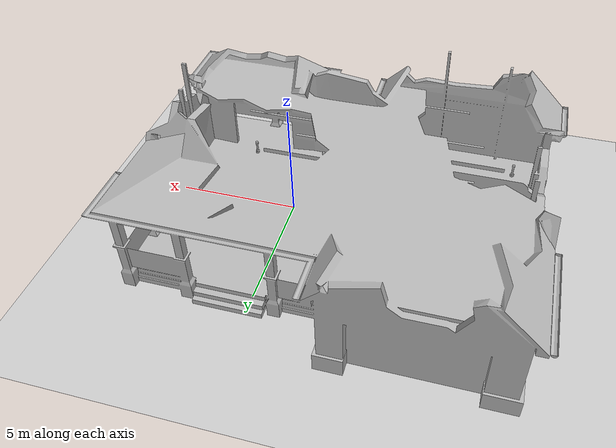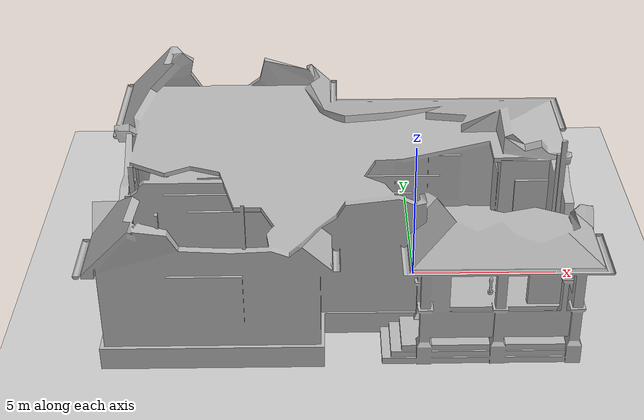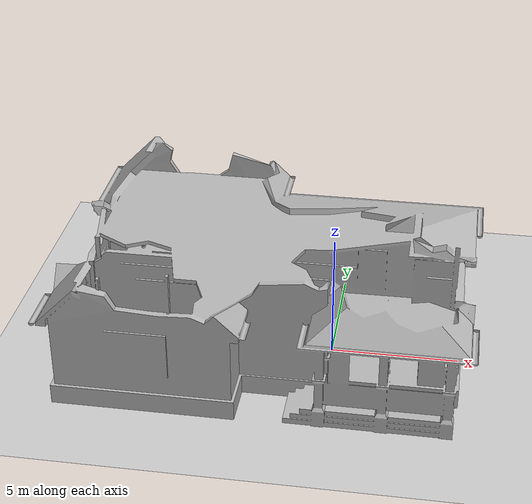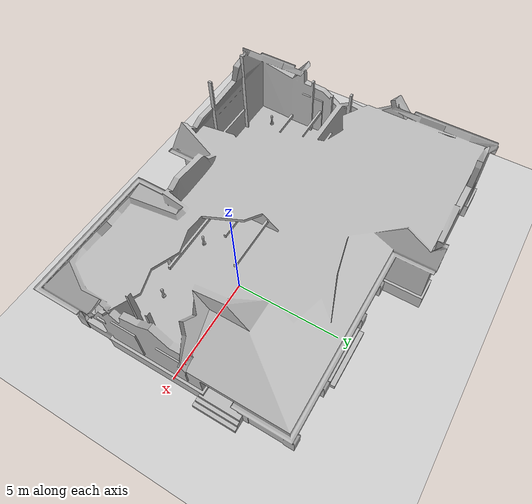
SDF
<sdf version="1.6">
 <world name="default">
  <light name="sun" type="directional">
   <pose>0 0 10 0 -0 0</pose>
   <diffuse>0.8 0.8 0.8 1</diffuse>
   <specular>0.2 0.2 0.2 1</specular>
   <attenuation>
    <range>1000</range>
    <constant>0.9</constant>
    <linear>0.01</linear>
    <quadratic>0.001</quadratic>
   </attenuation>
   <direction>-0.5 0.1 -0.9</direction>
  </light>
  <model name="ground_plane">
   <static>1</static>
   <link name="link">
    <collision name="collision">
     <geometry><plane><normal>0 0 1</normal><size>100 100</size></plane></geometry>
     <surface><friction><ode><mu>100</mu><mu2>50</mu2></ode></friction></surface>
    </collision>
    <visual name="visual">
     <cast_shadows>0</cast_shadows>
     <geometry><plane><normal>0 0 1</normal><size>100 100</size></plane></geometry>
     <material>
      <script><uri>file://media/materials/scripts/gazebo.material</uri><name>Gazebo/Grey</name></script>
     </material>
    </visual>
   </link>
  </model>
  <gravity>0 0 -9.8</gravity>
  <magnetic_field>6e-06 2.3e-05 -4.2e-05</magnetic_field>
  <atmosphere type="adiabatic"/>
  <physics name="default_physics" default="0" type="ode">
   <max_step_size>0.001</max_step_size>
   <real_time_factor>1</real_time_factor>
   <real_time_update_rate>1000</real_time_update_rate>
  </physics>
  <scene><ambient>0.4 0.4 0.4 1</ambient><background>0.7 0.7 0.7 1</background><shadows>1</shadows></scene>
  <spherical_coordinates>
   <surface_model>EARTH_WGS84</surface_model>
   <latitude_deg>0</latitude_deg>
   <longitude_deg>0</longitude_deg>
   <elevation>0</elevation>
   <heading_deg>0</heading_deg>
  </spherical_coordinates>
  <model name="collapsed_house">
   <static>1</static>
   <link name="link">
    <collision name="collision">
     <geometry>
      <mesh><scale>1.5 1.5 1.5</scale><uri>model://collapsed_house/meshes/collapsed_house.dae</uri></mesh>
     </geometry>
    </collision>
    <visual name="visual">
     <geometry>
      <mesh><scale>1.5 1.5 1.5</scale><uri>model://collapsed_house/meshes/collapsed_house.dae</uri></mesh>
     </geometry>
    </visual>
   </link>
   <pose>-2.4721 1.10732 0 0 -0 0</pose>
  </model>
  <model name="mars_rover">
   <static>1</static>
   <link name="link">
    <collision name="solar_panel_collision">
     <pose>0 -0.06945 0.47293 0 -0 0</pose>
     <geometry><box><size>0.87974 0.8821 0.02602</size></box></geometry>
    </collision>
    <collision name="chassis_collision">
     <pose>0 -0.05 0.31475 0 -0 0</pose>
     <geometry><box><size>0.49522 0.67401 0.28915</size></box></geometry>
    </collision>
    <collision name="rear_left_bumper_collision">
     <pose>0.30107 0.3835 0.38976 0 -0 0</pose>
     <geometry><box><size>0.04442 0.38897 0.07918</size></box></geometry>
    </collision>
    <collision name="rear_right_bumper_collision">
     <pose>-0.30107 0.3835 0.38976 0 -0 0</pose>
     <geometry><box><size>0.04442 0.38897 0.07918</size></box></geometry>
    </collision>
    <collision name="rear_bumper_collision">
     <pose>0 0.59414 0.38976 0 -0 0</pose>
     <geometry><box><size>0.56656 0.04442 0.07918</size></box></geometry>
    </collision>
    <collision name="bin_back_panel_collision">
     <pose>0 0.47 0.32114 0.69137 -0 0</pose>
     <geometry><box><size>0.43774 0.212366 0.05173</size></box></geometry>
    </collision>
    <collision name="bin_left_panel_collision1">
     <pose>0.22615 0.32897 0.33193 0 -0 0</pose>
     <geometry><box><size>0.01116 0.19338 0.16304</size></box></geometry>
    </collision>
    <collision name="bin_left_panel_collision2">
     <pose>0.22615 0.471 0.39308 0 -0 0</pose>
     <geometry><box><size>0.01116 0.15 0.04</size></box></geometry>
    </collision>
    <collision name="bin_left_panel_collision3">
     <pose>0.22615 0.45 0.35308 0 -0 0</pose>
     <geometry><box><size>0.01116 0.15 0.04</size></box></geometry>
    </collision>
    <collision name="bin_left_panel_collision4">
     <pose>0.22615 0.39308 0.31308 0 -0 0</pose>
     <geometry><box><size>0.01116 0.15 0.04</size></box></geometry>
    </collision>
    <collision name="bin_right_panel_collision1">
     <pose>-0.22615 0.32897 0.33193 0 -0 0</pose>
     <geometry><box><size>0.01116 0.19338 0.16304</size></box></geometry>
    </collision>
    <collision name="bin_right_panel_collision2">
     <pose>-0.22615 0.471 0.39308 0 -0 0</pose>
     <geometry><box><size>0.01116 0.15 0.04</size></box></geometry>
    </collision>
    <collision name="bin_right_panel_collision3">
     <pose>-0.22615 0.45 0.35308 0 -0 0</pose>
     <geometry><box><size>0.01116 0.15 0.04</size></box></geometry>
    </collision>
    <collision name="bin_right_panel_collision4">
     <pose>-0.22615 0.39308 0.31308 0 -0 0</pose>
     <geometry><box><size>0.01116 0.15 0.04</size></box></geometry>
    </collision>
    <collision name="bin_front_panel_collision">
     <pose>0 0.30047 0.32114 2.26207 -0 0</pose>
     <geometry><box><size>0.43774 0.212366 0.05173</size></box></geometry>
    </collision>
    <collision name="front_left_wheel_collision">
     <pose>0.31103 -0.32115 0.1358 1.5707 0 1.5707</pose>
     <geometry><cylinder><radius>0.1358</radius><length>0.1641</length></cylinder></geometry>
    </collision>
    <collision name="front_right_wheel_collision">
     <pose>-0.31103 -0.32115 0.1358 1.5707 0 1.5707</pose>
     <geometry><cylinder><radius>0.1358</radius><length>0.1641</length></cylinder></geometry>
    </collision>
    <collision name="rear_left_wheel_collision">
     <pose>0.31103 0.28049 0.1358 1.5707 0 1.5707</pose>
     <geometry><cylinder><radius>0.1358</radius><length>0.1641</length></cylinder></geometry>
    </collision>
    <collision name="rear_right_wheel_collision">
     <pose>-0.31103 0.28049 0.1358 1.5707 0 1.5707</pose>
     <geometry><cylinder><radius>0.1358</radius><length>0.1641</length></cylinder></geometry>
    </collision>
    <visual name="visual">
     <geometry><mesh><uri>model://mars_rover/meshes/rover.dae</uri></mesh></geometry>
    </visual>
   </link>
   <pose>3.58025 -0.438435 0 0 -0 0</pose>
  </model>
  <model name="mars_rover_0">
   <static>1</static>
   <link name="link">
    <collision name="solar_panel_collision">
     <pose>0 -0.06945 0.47293 0 -0 0</pose>
     <geometry><box><size>0.87974 0.8821 0.02602</size></box></geometry>
    </collision>
    <collision name="chassis_collision">
     <pose>0 -0.05 0.31475 0 -0 0</pose>
     <geometry><box><size>0.49522 0.67401 0.28915</size></box></geometry>
    </collision>
    <collision name="rear_left_bumper_collision">
     <pose>0.30107 0.3835 0.38976 0 -0 0</pose>
     <geometry><box><size>0.04442 0.38897 0.07918</size></box></geometry>
    </collision>
    <collision name="rear_right_bumper_collision">
     <pose>-0.30107 0.3835 0.38976 0 -0 0</pose>
     <geometry><box><size>0.04442 0.38897 0.07918</size></box></geometry>
    </collision>
    <collision name="rear_bumper_collision">
     <pose>0 0.59414 0.38976 0 -0 0</pose>
     <geometry><box><size>0.56656 0.04442 0.07918</size></box></geometry>
    </collision>
    <collision name="bin_back_panel_collision">
     <pose>0 0.47 0.32114 0.69137 -0 0</pose>
     <geometry><box><size>0.43774 0.212366 0.05173</size></box></geometry>
    </collision>
    <collision name="bin_left_panel_collision1">
     <pose>0.22615 0.32897 0.33193 0 -0 0</pose>
     <geometry><box><size>0.01116 0.19338 0.16304</size></box></geometry>
    </collision>
    <collision name="bin_left_panel_collision2">
     <pose>0.22615 0.471 0.39308 0 -0 0</pose>
     <geometry><box><size>0.01116 0.15 0.04</size></box></geometry>
    </collision>
    <collision name="bin_left_panel_collision3">
     <pose>0.22615 0.45 0.35308 0 -0 0</pose>
     <geometry><box><size>0.01116 0.15 0.04</size></box></geometry>
    </collision>
    <collision name="bin_left_panel_collision4">
     <pose>0.22615 0.39308 0.31308 0 -0 0</pose>
     <geometry><box><size>0.01116 0.15 0.04</size></box></geometry>
    </collision>
    <collision name="bin_right_panel_collision1">
     <pose>-0.22615 0.32897 0.33193 0 -0 0</pose>
     <geometry><box><size>0.01116 0.19338 0.16304</size></box></geometry>
    </collision>
    <collision name="bin_right_panel_collision2">
     <pose>-0.22615 0.471 0.39308 0 -0 0</pose>
     <geometry><box><size>0.01116 0.15 0.04</size></box></geometry>
    </collision>
    <collision name="bin_right_panel_collision3">
     <pose>-0.22615 0.45 0.35308 0 -0 0</pose>
     <geometry><box><size>0.01116 0.15 0.04</size></box></geometry>
    </collision>
    <collision name="bin_right_panel_collision4">
     <pose>-0.22615 0.39308 0.31308 0 -0 0</pose>
     <geometry><box><size>0.01116 0.15 0.04</size></box></geometry>
    </collision>
    <collision name="bin_front_panel_collision">
     <pose>0 0.30047 0.32114 2.26207 -0 0</pose>
     <geometry><box><size>0.43774 0.212366 0.05173</size></box></geometry>
    </collision>
    <collision name="front_left_wheel_collision">
     <pose>0.31103 -0.32115 0.1358 1.5707 0 1.5707</pose>
     <geometry><cylinder><radius>0.1358</radius><length>0.1641</length></cylinder></geometry>
    </collision>
    <collision name="front_right_wheel_collision">
     <pose>-0.31103 -0.32115 0.1358 1.5707 0 1.5707</pose>
     <geometry><cylinder><radius>0.1358</radius><length>0.1641</length></cylinder></geometry>
    </collision>
    <collision name="rear_left_wheel_collision">
     <pose>0.31103 0.28049 0.1358 1.5707 0 1.5707</pose>
     <geometry><cylinder><radius>0.1358</radius><length>0.1641</length></cylinder></geometry>
    </collision>
    <collision name="rear_right_wheel_collision">
     <pose>-0.31103 0.28049 0.1358 1.5707 0 1.5707</pose>
     <geometry><cylinder><radius>0.1358</radius><length>0.1641</length></cylinder></geometry>
    </collision>
    <visual name="visual">
     <geometry><mesh><uri>model://mars_rover/meshes/rover.dae</uri></mesh></geometry>
    </visual>
   </link>
   <pose>-5.98855 4.62867 0 0 -0 0</pose>
  </model>
  <model name="mars_rover_1">
   <static>1</static>
   <link name="link">
    <collision name="solar_panel_collision">
     <pose>0 -0.06945 0.47293 0 -0 0</pose>
     <geometry><box><size>0.87974 0.8821 0.02602</size></box></geometry>
    </collision>
    <collision name="chassis_collision">
     <pose>0 -0.05 0.31475 0 -0 0</pose>
     <geometry><box><size>0.49522 0.67401 0.28915</size></box></geometry>
    </collision>
    <collision name="rear_left_bumper_collision">
     <pose>0.30107 0.3835 0.38976 0 -0 0</pose>
     <geometry><box><size>0.04442 0.38897 0.07918</size></box></geometry>
    </collision>
    <collision name="rear_right_bumper_collision">
     <pose>-0.30107 0.3835 0.38976 0 -0 0</pose>
     <geometry><box><size>0.04442 0.38897 0.07918</size></box></geometry>
    </collision>
    <collision name="rear_bumper_collision">
     <pose>0 0.59414 0.38976 0 -0 0</pose>
     <geometry><box><size>0.56656 0.04442 0.07918</size></box></geometry>
    </collision>
    <collision name="bin_back_panel_collision">
     <pose>0 0.47 0.32114 0.69137 -0 0</pose>
     <geometry><box><size>0.43774 0.212366 0.05173</size></box></geometry>
    </collision>
    <collision name="bin_left_panel_collision1">
     <pose>0.22615 0.32897 0.33193 0 -0 0</pose>
     <geometry><box><size>0.01116 0.19338 0.16304</size></box></geometry>
    </collision>
    <collision name="bin_left_panel_collision2">
     <pose>0.22615 0.471 0.39308 0 -0 0</pose>
     <geometry><box><size>0.01116 0.15 0.04</size></box></geometry>
    </collision>
    <collision name="bin_left_panel_collision3">
     <pose>0.22615 0.45 0.35308 0 -0 0</pose>
     <geometry><box><size>0.01116 0.15 0.04</size></box></geometry>
    </collision>
    <collision name="bin_left_panel_collision4">
     <pose>0.22615 0.39308 0.31308 0 -0 0</pose>
     <geometry><box><size>0.01116 0.15 0.04</size></box></geometry>
    </collision>
    <collision name="bin_right_panel_collision1">
     <pose>-0.22615 0.32897 0.33193 0 -0 0</pose>
     <geometry><box><size>0.01116 0.19338 0.16304</size></box></geometry>
    </collision>
    <collision name="bin_right_panel_collision2">
     <pose>-0.22615 0.471 0.39308 0 -0 0</pose>
     <geometry><box><size>0.01116 0.15 0.04</size></box></geometry>
    </collision>
    <collision name="bin_right_panel_collision3">
     <pose>-0.22615 0.45 0.35308 0 -0 0</pose>
     <geometry><box><size>0.01116 0.15 0.04</size></box></geometry>
    </collision>
    <collision name="bin_right_panel_collision4">
     <pose>-0.22615 0.39308 0.31308 0 -0 0</pose>
     <geometry><box><size>0.01116 0.15 0.04</size></box></geometry>
    </collision>
    <collision name="bin_front_panel_collision">
     <pose>0 0.30047 0.32114 2.26207 -0 0</pose>
     <geometry><box><size>0.43774 0.212366 0.05173</size></box></geometry>
    </collision>
    <collision name="front_left_wheel_collision">
     <pose>0.31103 -0.32115 0.1358 1.5707 0 1.5707</pose>
     <geometry><cylinder><radius>0.1358</radius><length>0.1641</length></cylinder></geometry>
    </collision>
    <collision name="front_right_wheel_collision">
     <pose>-0.31103 -0.32115 0.1358 1.5707 0 1.5707</pose>
     <geometry><cylinder><radius>0.1358</radius><length>0.1641</length></cylinder></geometry>
    </collision>
    <collision name="rear_left_wheel_collision">
     <pose>0.31103 0.28049 0.1358 1.5707 0 1.5707</pose>
     <geometry><cylinder><radius>0.1358</radius><length>0.1641</length></cylinder></geometry>
    </collision>
    <collision name="rear_right_wheel_collision">
     <pose>-0.31103 0.28049 0.1358 1.5707 0 1.5707</pose>
     <geometry><cylinder><radius>0.1358</radius><length>0.1641</length></cylinder></geometry>
    </collision>
    <visual name="visual">
     <geometry><mesh><uri>model://mars_rover/meshes/rover.dae</uri></mesh></geometry>
    </visual>
   </link>
   <pose>-8.02605 2.46075 0 0 -0 0</pose>
  </model>
  <model name="warehouse_robot">
   <static>1</static>
   <link name="link">
    <visual name="visual">
     <geometry><mesh><uri>model://warehouse_robot/meshes/robot.dae</uri></mesh></geometry>
    </visual>
    <collision name="collision_base">
     <pose>0 0 0.20437 0 -0 0</pose>
     <geometry><box><size>0.55508 1.0228 0.40874</size></box></geometry>
    </collision>
    <collision name="collision_bumper">
     <pose>0 0 0.062205 0 -0 0</pose>
     <geometry><box><size>0.67266 1.17126 0.12441</size></box></geometry>
    </collision>
    <collision name="collision_column_large">
     <pose>0 -0.27539 0.43738 0 -0 0</pose>
     <geometry><cylinder><radius>0.08652</radius><length>0.87476</length></cylinder></geometry>
    </collision>
    <collision name="collision_column_small">
     <pose>0 -0.27539 0.70424 0 -0 0</pose>
     <geometry><cylinder><radius>0.04261</radius><length>1.40848</length></cylinder></geometry>
    </collision>
   </link>
   <pose>2.39249 -1.99253 0 0 -0 0</pose>
  </model>
  <model name="warehouse_robot_0">
   <static>1</static>
   <link name="link">
    <visual name="visual">
     <geometry><mesh><uri>model://warehouse_robot/meshes/robot.dae</uri></mesh></geometry>
    </visual>
    <collision name="collision_base">
     <pose>0 0 0.20437 0 -0 0</pose>
     <geometry><box><size>0.55508 1.0228 0.40874</size></box></geometry>
    </collision>
    <collision name="collision_bumper">
     <pose>0 0 0.062205 0 -0 0</pose>
     <geometry><box><size>0.67266 1.17126 0.12441</size></box></geometry>
    </collision>
    <collision name="collision_column_large">
     <pose>0 -0.27539 0.43738 0 -0 0</pose>
     <geometry><cylinder><radius>0.08652</radius><length>0.87476</length></cylinder></geometry>
    </collision>
    <collision name="collision_column_small">
     <pose>0 -0.27539 0.70424 0 -0 0</pose>
     <geometry><cylinder><radius>0.04261</radius><length>1.40848</length></cylinder></geometry>
    </collision>
   </link>
   <pose>-0.690288 -2.03417 0 0 -0 0</pose>
  </model>
  <model name="warehouse_robot_1">
   <static>1</static>
   <link name="link">
    <visual name="visual">
     <geometry><mesh><uri>model://warehouse_robot/meshes/robot.dae</uri></mesh></geometry>
    </visual>
    <collision name="collision_base">
     <pose>0 0 0.20437 0 -0 0</pose>
     <geometry><box><size>0.55508 1.0228 0.40874</size></box></geometry>
    </collision>
    <collision name="collision_bumper">
     <pose>0 0 0.062205 0 -0 0</pose>
     <geometry><box><size>0.67266 1.17126 0.12441</size></box></geometry>
    </collision>
    <collision name="collision_column_large">
     <pose>0 -0.27539 0.43738 0 -0 0</pose>
     <geometry><cylinder><radius>0.08652</radius><length>0.87476</length></cylinder></geometry>
    </collision>
    <collision name="collision_column_small">
     <pose>0 -0.27539 0.70424 0 -0 0</pose>
     <geometry><cylinder><radius>0.04261</radius><length>1.40848</length></cylinder></geometry>
    </collision>
   </link>
   <pose>-8.80259 -3.27935 0 0 -0 0</pose>
  </model>
  <model name="warehouse_robot_2">
   <static>1</static>
   <link name="link">
    <visual name="visual">
     <geometry><mesh><uri>model://warehouse_robot/meshes/robot.dae</uri></mesh></geometry>
    </visual>
    <collision name="collision_base">
     <pose>0 0 0.20437 0 -0 0</pose>
     <geometry><box><size>0.55508 1.0228 0.40874</size></box></geometry>
    </collision>
    <collision name="collision_bumper">
     <pose>0 0 0.062205 0 -0 0</pose>
     <geometry><box><size>0.67266 1.17126 0.12441</size></box></geometry>
    </collision>
    <collision name="collision_column_large">
     <pose>0 -0.27539 0.43738 0 -0 0</pose>
     <geometry><cylinder><radius>0.08652</radius><length>0.87476</length></cylinder></geometry>
    </collision>
    <collision name="collision_column_small">
     <pose>0 -0.27539 0.70424 0 -0 0</pose>
     <geometry><cylinder><radius>0.04261</radius><length>1.40848</length></cylinder></geometry>
    </collision>
   </link>
   <pose>-9.03927 5.7177 0 0 -0 0</pose>
  </model>
  <model name="mars_rover_2">
   <static>1</static>
   <link name="link">
    <collision name="solar_panel_collision">
     <pose>0 -0.06945 0.47293 0 -0 0</pose>
     <geometry><box><size>0.87974 0.8821 0.02602</size></box></geometry>
    </collision>
    <collision name="chassis_collision">
     <pose>0 -0.05 0.31475 0 -0 0</pose>
     <geometry><box><size>0.49522 0.67401 0.28915</size></box></geometry>
    </collision>
    <collision name="rear_left_bumper_collision">
     <pose>0.30107 0.3835 0.38976 0 -0 0</pose>
     <geometry><box><size>0.04442 0.38897 0.07918</size></box></geometry>
    </collision>
    <collision name="rear_right_bumper_collision">
     <pose>-0.30107 0.3835 0.38976 0 -0 0</pose>
     <geometry><box><size>0.04442 0.38897 0.07918</size></box></geometry>
    </collision>
    <collision name="rear_bumper_collision">
     <pose>0 0.59414 0.38976 0 -0 0</pose>
     <geometry><box><size>0.56656 0.04442 0.07918</size></box></geometry>
    </collision>
    <collision name="bin_back_panel_collision">
     <pose>0 0.47 0.32114 0.69137 -0 0</pose>
     <geometry><box><size>0.43774 0.212366 0.05173</size></box></geometry>
    </collision>
    <collision name="bin_left_panel_collision1">
     <pose>0.22615 0.32897 0.33193 0 -0 0</pose>
     <geometry><box><size>0.01116 0.19338 0.16304</size></box></geometry>
    </collision>
    <collision name="bin_left_panel_collision2">
     <pose>0.22615 0.471 0.39308 0 -0 0</pose>
     <geometry><box><size>0.01116 0.15 0.04</size></box></geometry>
    </collision>
    <collision name="bin_left_panel_collision3">
     <pose>0.22615 0.45 0.35308 0 -0 0</pose>
     <geometry><box><size>0.01116 0.15 0.04</size></box></geometry>
    </collision>
    <collision name="bin_left_panel_collision4">
     <pose>0.22615 0.39308 0.31308 0 -0 0</pose>
     <geometry><box><size>0.01116 0.15 0.04</size></box></geometry>
    </collision>
    <collision name="bin_right_panel_collision1">
     <pose>-0.22615 0.32897 0.33193 0 -0 0</pose>
     <geometry><box><size>0.01116 0.19338 0.16304</size></box></geometry>
    </collision>
    <collision name="bin_right_panel_collision2">
     <pose>-0.22615 0.471 0.39308 0 -0 0</pose>
     <geometry><box><size>0.01116 0.15 0.04</size></box></geometry>
    </collision>
    <collision name="bin_right_panel_collision3">
     <pose>-0.22615 0.45 0.35308 0 -0 0</pose>
     <geometry><box><size>0.01116 0.15 0.04</size></box></geometry>
    </collision>
    <collision name="bin_right_panel_collision4">
     <pose>-0.22615 0.39308 0.31308 0 -0 0</pose>
     <geometry><box><size>0.01116 0.15 0.04</size></box></geometry>
    </collision>
    <collision name="bin_front_panel_collision">
     <pose>0 0.30047 0.32114 2.26207 -0 0</pose>
     <geometry><box><size>0.43774 0.212366 0.05173</size></box></geometry>
    </collision>
    <collision name="front_left_wheel_collision">
     <pose>0.31103 -0.32115 0.1358 1.5707 0 1.5707</pose>
     <geometry><cylinder><radius>0.1358</radius><length>0.1641</length></cylinder></geometry>
    </collision>
    <collision name="front_right_wheel_collision">
     <pose>-0.31103 -0.32115 0.1358 1.5707 0 1.5707</pose>
     <geometry><cylinder><radius>0.1358</radius><length>0.1641</length></cylinder></geometry>
    </collision>
    <collision name="rear_left_wheel_collision">
     <pose>0.31103 0.28049 0.1358 1.5707 0 1.5707</pose>
     <geometry><cylinder><radius>0.1358</radius><length>0.1641</length></cylinder></geometry>
    </collision>
    <collision name="rear_right_wheel_collision">
     <pose>-0.31103 0.28049 0.1358 1.5707 0 1.5707</pose>
     <geometry><cylinder><radius>0.1358</radius><length>0.1641</length></cylinder></geometry>
    </collision>
    <visual name="visual">
     <geometry><mesh><uri>model://mars_rover/meshes/rover.dae</uri></mesh></geometry>
    </visual>
   </link>
   <pose>-8.97378 -0.749576 0 0 -0 0</pose>
  </model>
 </world>
</sdf>
